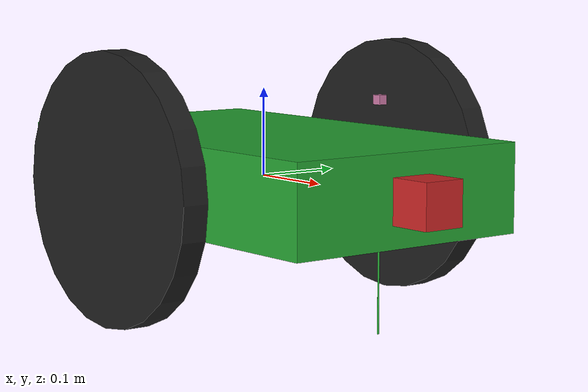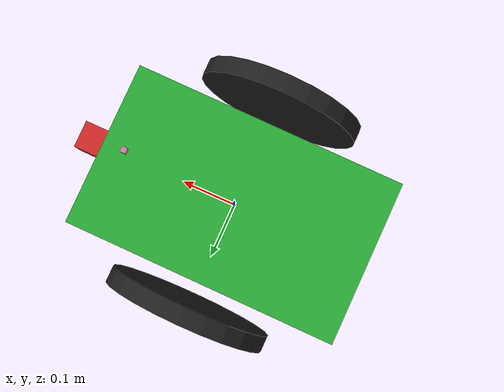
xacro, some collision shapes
<?xml version='1.0'?>

<robot name="my_robot" xmlns:xacro="http://www.ros.org/wiki/xacro">

  <xacro:include filename="$(find my_robot)/urdf/my_robot.gazebo" />
  <link name="robot_footprint"></link>

  <!-- Build the robot -->
  <joint name="robot_footprint_joint" type="fixed">
    <origin xyz="0 0 0" rpy="0 0 0" />
    <parent link="robot_footprint"/>
    <child link="chassis" />
  </joint>

  <link name='chassis'>
    <pose>0 0 0.15 0 0 0</pose>

    <inertial>
      <mass value="15.0"/>
      <origin xyz="0.0 0 0" rpy=" 0 0 0"/>
      <inertia
          ixx="0.1" ixy="0" ixz="0"
          iyy="0.1" iyz="0"
          izz="0.1"
      />
    </inertial>

    <collision name='collision'>
      <origin xyz="0 0 0" rpy=" 0 0 0"/>
      <geometry>
        <box size=".5 .3 .1"/>
      </geometry>
    </collision>

    <visual name='chassis_visual'>
      <origin xyz="0 0 0" rpy=" 0 0 0"/>
      <geometry>
        <box size=".5 .3 .1"/>
      </geometry>
    </visual>

    <collision name='back_caster_collision'>
      <origin xyz="-0.2 0 -0.1" rpy=" 0 0 0"/>
      <geometry>
        <cylinder radius="0.001" length="0.0999"/>
      </geometry>
    </collision>

    <visual name='back_caster_visual'>
      <origin xyz="-0.2 0 -0.1" rpy=" 0 0 0"/>
      <geometry>
        <cylinder radius="0.001" length="0.1"/>
      </geometry>
    </visual>

    <collision name='front_caster_collision'>
      <origin xyz="0.2 0 -0.1" rpy=" 0 0 0"/>
      <geometry>
        <cylinder radius="0.001" length="0.0999"/>
      </geometry>
    </collision>

    <visual name='front_caster_visual'>
      <origin xyz="0.2 0 -0.1" rpy=" 0 0 0"/>
      <geometry>
        <cylinder radius="0.001" length="0.1"/>
      </geometry>
    </visual>

  </link>

  <!-- Wheels -->
  <link name='left_wheel'>

    <inertial>
      <mass value="5"/>
      <origin xyz="0 0 0" rpy="0 1.5707 1.5707"/>
      <inertia
        ixx="0.1" ixy="0" ixz="0"
        iyy="0.1" iyz="0"
        izz="0.1"
      />
    </inertial>

    <collision name='collision'>
      <origin xyz="0 0 0" rpy="0 1.5707 1.5707"/>
      <geometry>
        <cylinder radius="0.15" length="0.03"/>
      </geometry>
    </collision>

    <visual name='left_wheel_visual'>
      <origin xyz="0 0 0" rpy="0 1.5707 1.5707"/>
      <geometry>
        <cylinder radius="0.15" length="0.03"/>
      </geometry>
    </visual>

  </link>

  <link name='right_wheel'>

    <inertial>
      <mass value="5"/>
      <origin xyz="0 0 0" rpy="0 1.5707 1.5707"/>
      <inertia
        ixx="0.1" ixy="0" ixz="0"
        iyy="0.1" iyz="0"
        izz="0.1"
      />
    </inertial>

    <collision name='collision'>
      <origin xyz="0 0 0" rpy="0 1.5707 1.5707"/>
      <geometry>
        <cylinder radius="0.15" length="0.03"/>
      </geometry>
    </collision>

    <visual name='right_wheel_visual'>
      <origin xyz="0 0 0" rpy="0 1.5707 1.5707"/>
      <geometry>
        <cylinder radius="0.15" length="0.03"/>
      </geometry>
    </visual>

  </link>

  <joint type="continuous" name="left_wheel_hinge">
    <origin xyz="0 0.2 0" rpy="0 0 0"/>
    <child link="left_wheel"/>
    <parent link="chassis"/>
    <axis xyz="0 1 0" rpy="0 0 0"/>
    <limit effort="10000" velocity="1000"/>
    <dynamics damping="1.0" friction="1.0"/>
  </joint>

  <joint type="continuous" name="right_wheel_hinge">
    <origin xyz="0 -0.2 0" rpy="0 0 0"/>
    <child link="right_wheel"/>
    <parent link="chassis"/>
    <axis xyz="0 1 0" rpy="0 0 0"/>
    <limit effort="10000" velocity="1000"/>
    <dynamics damping="1.0" friction="1.0"/>
  </joint>

  <!-- RGB Camera -->
  <link name='camera'>

    <inertial>
      <mass value="0.1"/>
      <origin xyz="0 0 0" rpy="0 0 0"/>
      <inertia
        ixx="1e-6" ixy="0" ixz="0"
        iyy="1e-6" iyz="0"
        izz="1e-6"
      />
    </inertial>

    <collision name='camera_collision'>
      <origin xyz="0 0 0" rpy="0 0 0"/>
      <geometry>
        <box size=".05 .05 .05"/>
      </geometry>
    </collision>

    <visual name='camera_visual'>
      <origin xyz="0 0 0" rpy="0 0 0"/>
      <geometry>
        <box size=".05 .05 .05"/>
      </geometry>
    </visual>

   <box_inertia x="0.05" y="0.05" z="0.05" m="0.1">
      <origin xyz="0 0 0" rpy="0 0 0" />
    </box_inertia>

  </link>

  <joint type="fixed" name="camera_joint">
    <origin xyz="0.275 0 0" rpy="0 0 0"/>
    <child link="camera"/>
    <parent link="chassis"/>
    <axis xyz="0 1 0" rpy="0 0 0"/>
  </joint>

  <!-- RGB-D Camera -->
  <joint name="camera_optical_joint" type="fixed">
    <origin xyz="0 0 0" rpy="-1.5707 0 -1.5707"/>
    <parent link="camera"/>
    <child link="camera_link_optical"/>
  </joint>

  <link name="camera_link_optical">
  </link>

  <!-- Lidar -->
  <link name='hokuyo'>

    <inertial>
      <mass value="1e-5"/>
      <origin xyz="0 0 0" rpy="0 0 0"/>
      <inertia
        ixx="1e-6" ixy="0" ixz="0"
        iyy="1e-6" iyz="0"
        izz="1e-6"
      />
    </inertial>

    <collision name='hokuyo_collision'>
      <origin xyz="0 0 0" rpy="0 0 0"/>
      <geometry>
        <box size=".01 .01 .01"/>
      </geometry>
    </collision>

    <visual name='hokuyo_visual'>
      <origin xyz="0 0 0" rpy="0 0 0"/>
      <geometry>
        <mesh filename="package://my_robot/meshes/hokuyo.dae"/>
      </geometry>
    </visual>

   <box_inertia x="0.05" y="0.05" z="0.05" m="0.1">
      <origin xyz="0 0 0" rpy="0 0 0" />
    </box_inertia>

  </link>

  <joint type="fixed" name="hokuyo_joint">
    <origin xyz=".2 0 .1" rpy="0 0 0"/>
    <child link="hokuyo"/>
    <parent link="chassis"/>
    <axis xyz="0 1 0" rpy="0 0 0"/>
  </joint>

  <!-- Meterials -->
  <gazebo reference="left_wheel">
    <material>Gazebo/Black</material>
  </gazebo>

  <gazebo reference="right_wheel">
    <material>Gazebo/Black</material>
  </gazebo>

  <gazebo reference="chassis">
    <material>Gazebo/Green</material>
  </gazebo>

  <gazebo reference="camera">
    <material>Gazebo/Red</material>
  </gazebo>
</robot>
